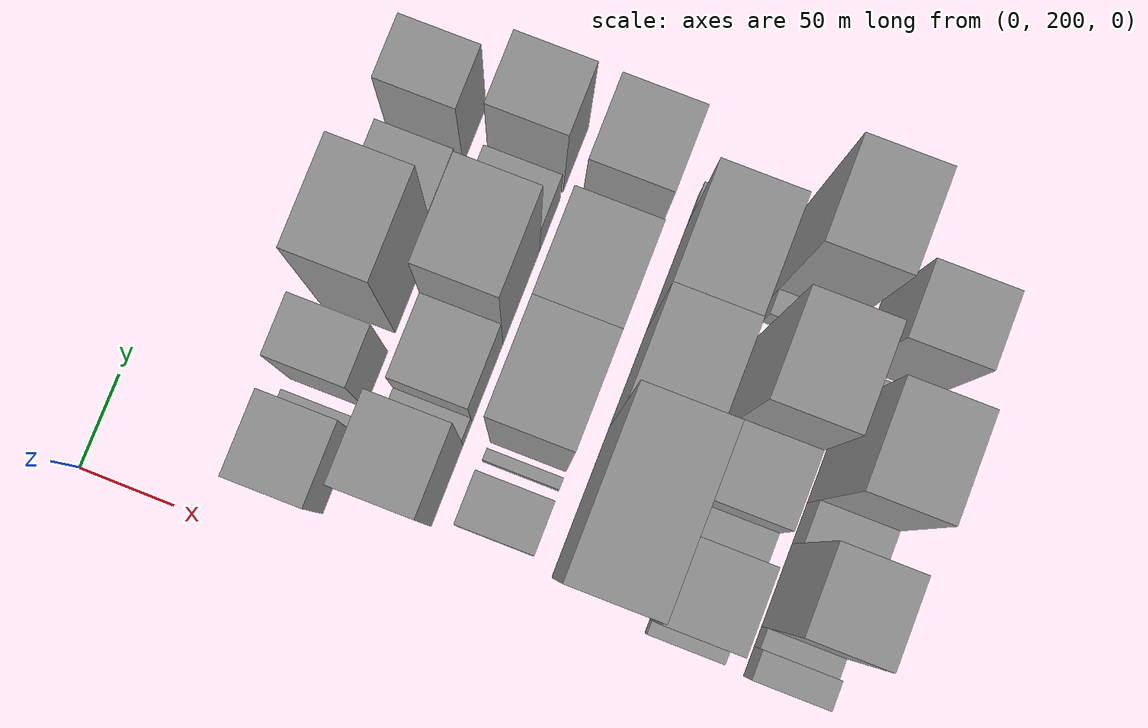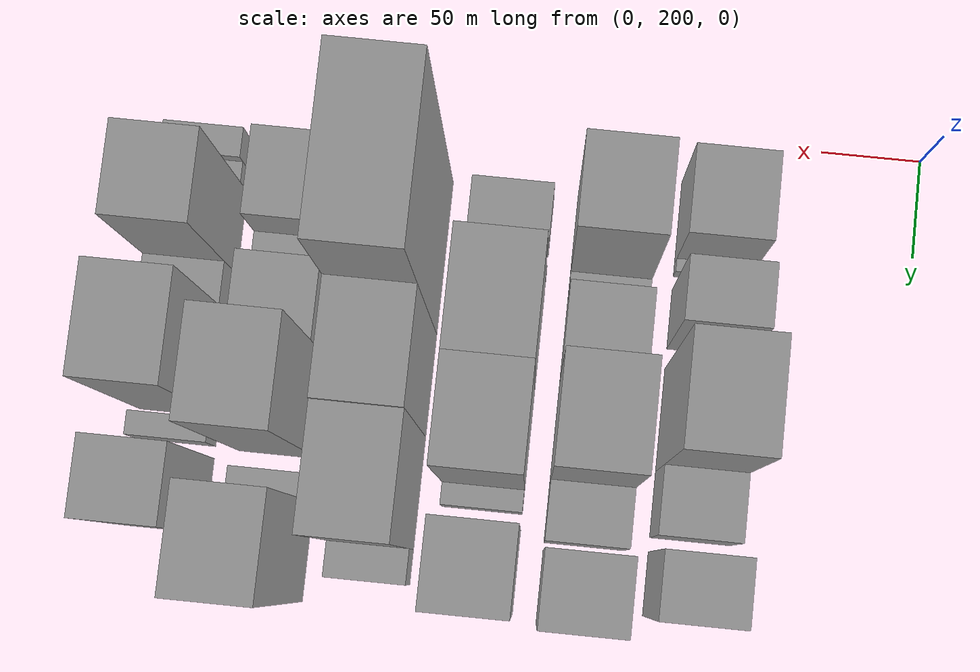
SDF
<sdf version="1.6">
 <world name="default">
  <model name="building_31">
   <static>1</static>
   <pose>100.0000 243.7767 0 0.000000 0.000000 0.000000</pose>
   <link name="link">
    <pose>0 0 39.00 0 0 0</pose>
    <collision name="collision"><geometry><box><size>40.0000 42.4446 78.0000</size></box></geometry></collision>
    <visual name="visual">
     <cast_shadows>0</cast_shadows>
     <geometry><box><size>40.0000 42.4446 78.0000</size></box></geometry>
     <material>
      <script>
       <uri>model://grey_wall/materials/scripts</uri>
       <uri>model://grey_wall/materials/textures</uri>
       <name>vrc/grey_wall</name>
      </script>
     </material>
    </visual>
   </link>
  </model>
  <model name="building_32">
   <static>1</static>
   <pose>100.0000 268.2766 0 0.000000 0.000000 0.000000</pose>
   <link name="link">
    <pose>0 0 7.50 0 0 0</pose>
    <collision name="collision"><geometry><box><size>40.0000 6.5552 15.0000</size></box></geometry></collision>
    <visual name="visual">
     <cast_shadows>0</cast_shadows>
     <geometry><box><size>40.0000 6.5552 15.0000</size></box></geometry>
     <material>
      <script>
       <uri>model://grey_wall/materials/scripts</uri>
       <uri>model://grey_wall/materials/textures</uri>
       <name>vrc/grey_wall</name>
      </script>
     </material>
    </visual>
   </link>
  </model>
  <model name="building_33">
   <static>1</static>
   <pose>100.0000 293.6610 0 0.000000 0.000000 0.000000</pose>
   <link name="link">
    <pose>0 0 48.00 0 0 0</pose>
    <collision name="collision"><geometry><box><size>40.0000 30.2137 96.0000</size></box></geometry></collision>
    <visual name="visual">
     <cast_shadows>0</cast_shadows>
     <geometry><box><size>40.0000 30.2137 96.0000</size></box></geometry>
     <material>
      <script>
       <uri>model://grey_wall/materials/scripts</uri>
       <uri>model://grey_wall/materials/textures</uri>
       <name>vrc/grey_wall</name>
      </script>
     </material>
    </visual>
   </link>
  </model>
  <model name="building_34">
   <static>1</static>
   <pose>100.0000 344.8513 0 0.000000 0.000000 0.000000</pose>
   <link name="link">
    <pose>0 0 75.00 0 0 0</pose>
    <collision name="collision"><geometry><box><size>40.0000 52.1668 150.0000</size></box></geometry></collision>
    <visual name="visual">
     <cast_shadows>0</cast_shadows>
     <geometry><box><size>40.0000 52.1668 150.0000</size></box></geometry>
     <material>
      <script>
       <uri>model://grey_wall/materials/scripts</uri>
       <uri>model://grey_wall/materials/textures</uri>
       <name>vrc/grey_wall</name>
      </script>
     </material>
    </visual>
   </link>
  </model>
  <model name="building_35">
   <static>1</static>
   <pose>100.0000 387.3853 0 0.000000 0.000000 0.000000</pose>
   <link name="link">
    <pose>0 0 28.50 0 0 0</pose>
    <collision name="collision"><geometry><box><size>40.0000 32.9012 57.0000</size></box></geometry></collision>
    <visual name="visual">
     <cast_shadows>0</cast_shadows>
     <geometry><box><size>40.0000 32.9012 57.0000</size></box></geometry>
     <material>
      <script>
       <uri>model://grey_wall/materials/scripts</uri>
       <uri>model://grey_wall/materials/textures</uri>
       <name>vrc/grey_wall</name>
      </script>
     </material>
    </visual>
   </link>
  </model>
  <model name="building_36">
   <static>1</static>
   <pose>100.0000 426.6326 0 0.000000 0.000000 0.000000</pose>
   <link name="link">
    <pose>0 0 51.00 0 0 0</pose>
    <collision name="collision"><geometry><box><size>40.0000 31.5933 102.0000</size></box></geometry></collision>
    <visual name="visual">
     <cast_shadows>0</cast_shadows>
     <geometry><box><size>40.0000 31.5933 102.0000</size></box></geometry>
     <material>
      <script>
       <uri>model://grey_wall/materials/scripts</uri>
       <uri>model://grey_wall/materials/textures</uri>
       <name>vrc/grey_wall</name>
      </script>
     </material>
    </visual>
   </link>
  </model>
  <model name="building_76">
   <static>1</static>
   <pose>152.0000 257.5611 0 0.000000 0.000000 0.000000</pose>
   <link name="link">
    <pose>0 0 66.00 0 0 0</pose>
    <collision name="collision"><geometry><box><size>40.0000 42.9223 132.0000</size></box></geometry></collision>
    <visual name="visual">
     <cast_shadows>0</cast_shadows>
     <geometry><box><size>40.0000 42.9223 132.0000</size></box></geometry>
     <material>
      <script>
       <uri>model://grey_wall/materials/scripts</uri>
       <uri>model://grey_wall/materials/textures</uri>
       <name>vrc/grey_wall</name>
      </script>
     </material>
    </visual>
   </link>
  </model>
  <model name="building_77">
   <static>1</static>
   <pose>152.0000 285.0619 0 0.000000 0.000000 0.000000</pose>
   <link name="link">
    <pose>0 0 13.50 0 0 0</pose>
    <collision name="collision"><geometry><box><size>40.0000 12.0793 27.0000</size></box></geometry></collision>
    <visual name="visual">
     <cast_shadows>0</cast_shadows>
     <geometry><box><size>40.0000 12.0793 27.0000</size></box></geometry>
     <material>
      <script>
       <uri>model://grey_wall/materials/scripts</uri>
       <uri>model://grey_wall/materials/textures</uri>
       <name>vrc/grey_wall</name>
      </script>
     </material>
    </visual>
   </link>
  </model>
  <model name="building_78">
   <static>1</static>
   <pose>152.0000 311.9442 0 0.000000 0.000000 0.000000</pose>
   <link name="link">
    <pose>0 0 36.00 0 0 0</pose>
    <collision name="collision"><geometry><box><size>40.0000 41.6852 72.0000</size></box></geometry></collision>
    <visual name="visual">
     <cast_shadows>0</cast_shadows>
     <geometry><box><size>40.0000 41.6852 72.0000</size></box></geometry>
     <material>
      <script>
       <uri>model://grey_wall/materials/scripts</uri>
       <uri>model://grey_wall/materials/textures</uri>
       <name>vrc/grey_wall</name>
      </script>
     </material>
    </visual>
   </link>
  </model>
  <model name="building_79">
   <static>1</static>
   <pose>152.0000 357.8503 0 0.000000 0.000000 0.000000</pose>
   <link name="link">
    <pose>0 0 73.50 0 0 0</pose>
    <collision name="collision"><geometry><box><size>40.0000 50.1271 147.0000</size></box></geometry></collision>
    <visual name="visual">
     <cast_shadows>0</cast_shadows>
     <geometry><box><size>40.0000 50.1271 147.0000</size></box></geometry>
     <material>
      <script>
       <uri>model://grey_wall/materials/scripts</uri>
       <uri>model://grey_wall/materials/textures</uri>
       <name>vrc/grey_wall</name>
      </script>
     </material>
    </visual>
   </link>
  </model>
  <model name="building_80">
   <static>1</static>
   <pose>152.0000 397.2267 0 0.000000 0.000000 0.000000</pose>
   <link name="link">
    <pose>0 0 27.00 0 0 0</pose>
    <collision name="collision"><geometry><box><size>40.0000 28.6257 54.0000</size></box></geometry></collision>
    <visual name="visual">
     <cast_shadows>0</cast_shadows>
     <geometry><box><size>40.0000 28.6257 54.0000</size></box></geometry>
     <material>
      <script>
       <uri>model://grey_wall/materials/scripts</uri>
       <uri>model://grey_wall/materials/textures</uri>
       <name>vrc/grey_wall</name>
      </script>
     </material>
    </visual>
   </link>
  </model>
  <model name="building_81">
   <static>1</static>
   <pose>152.0000 433.4288 0 0.000000 0.000000 0.000000</pose>
   <link name="link">
    <pose>0 0 55.50 0 0 0</pose>
    <collision name="collision"><geometry><box><size>40.0000 35.7785 111.0000</size></box></geometry></collision>
    <visual name="visual">
     <cast_shadows>0</cast_shadows>
     <geometry><box><size>40.0000 35.7785 111.0000</size></box></geometry>
     <material>
      <script>
       <uri>model://grey_wall/materials/scripts</uri>
       <uri>model://grey_wall/materials/textures</uri>
       <name>vrc/grey_wall</name>
      </script>
     </material>
    </visual>
   </link>
  </model>
  <model name="building_130">
   <static>1</static>
   <pose>204.0000 254.3857 0 0.000000 0.000000 0.000000</pose>
   <link name="link">
    <pose>0 0 24.00 0 0 0</pose>
    <collision name="collision"><geometry><box><size>40.0000 27.1744 48.0000</size></box></geometry></collision>
    <visual name="visual">
     <cast_shadows>0</cast_shadows>
     <geometry><box><size>40.0000 27.1744 48.0000</size></box></geometry>
     <material>
      <script>
       <uri>model://grey_wall/materials/scripts</uri>
       <uri>model://grey_wall/materials/textures</uri>
       <name>vrc/grey_wall</name>
      </script>
     </material>
    </visual>
   </link>
  </model>
  <model name="building_131">
   <static>1</static>
   <pose>204.0000 278.0805 0 0.000000 0.000000 0.000000</pose>
   <link name="link">
    <pose>0 0 7.50 0 0 0</pose>
    <collision name="collision"><geometry><box><size>40.0000 6.2152 15.0000</size></box></geometry></collision>
    <visual name="visual">
     <cast_shadows>0</cast_shadows>
     <geometry><box><size>40.0000 6.2152 15.0000</size></box></geometry>
     <material>
      <script>
       <uri>model://grey_wall/materials/scripts</uri>
       <uri>model://grey_wall/materials/textures</uri>
       <name>vrc/grey_wall</name>
      </script>
     </material>
    </visual>
   </link>
  </model>
  <model name="building_132">
   <static>1</static>
   <pose>204.0000 312.2605 0 0.000000 0.000000 0.000000</pose>
   <link name="link">
    <pose>0 0 73.50 0 0 0</pose>
    <collision name="collision"><geometry><box><size>40.0000 54.1449 147.0000</size></box></geometry></collision>
    <visual name="visual">
     <cast_shadows>0</cast_shadows>
     <geometry><box><size>40.0000 54.1449 147.0000</size></box></geometry>
     <material>
      <script>
       <uri>model://grey_wall/materials/scripts</uri>
       <uri>model://grey_wall/materials/textures</uri>
       <name>vrc/grey_wall</name>
      </script>
     </material>
    </visual>
   </link>
  </model>
  <model name="building_133">
   <static>1</static>
   <pose>204.0000 363.5900 0 0.000000 0.000000 0.000000</pose>
   <link name="link">
    <pose>0 0 73.50 0 0 0</pose>
    <collision name="collision"><geometry><box><size>40.0000 48.5142 147.0000</size></box></geometry></collision>
    <visual name="visual">
     <cast_shadows>0</cast_shadows>
     <geometry><box><size>40.0000 48.5142 147.0000</size></box></geometry>
     <material>
      <script>
       <uri>model://grey_wall/materials/scripts</uri>
       <uri>model://grey_wall/materials/textures</uri>
       <name>vrc/grey_wall</name>
      </script>
     </material>
    </visual>
   </link>
  </model>
  <model name="building_134">
   <static>1</static>
   <pose>204.0000 393.3172 0 0.000000 0.000000 0.000000</pose>
   <link name="link">
    <pose>0 0 13.50 0 0 0</pose>
    <collision name="collision"><geometry><box><size>40.0000 10.9402 27.0000</size></box></geometry></collision>
    <visual name="visual">
     <cast_shadows>0</cast_shadows>
     <geometry><box><size>40.0000 10.9402 27.0000</size></box></geometry>
     <material>
      <script>
       <uri>model://grey_wall/materials/scripts</uri>
       <uri>model://grey_wall/materials/textures</uri>
       <name>vrc/grey_wall</name>
      </script>
     </material>
    </visual>
   </link>
  </model>
  <model name="building_135">
   <static>1</static>
   <pose>204.0000 427.4362 0 0.000000 0.000000 0.000000</pose>
   <link name="link">
    <pose>0 0 60.00 0 0 0</pose>
    <collision name="collision"><geometry><box><size>40.0000 41.2978 120.0000</size></box></geometry></collision>
    <visual name="visual">
     <cast_shadows>0</cast_shadows>
     <geometry><box><size>40.0000 41.2978 120.0000</size></box></geometry>
     <material>
      <script>
       <uri>model://grey_wall/materials/scripts</uri>
       <uri>model://grey_wall/materials/textures</uri>
       <name>vrc/grey_wall</name>
      </script>
     </material>
    </visual>
   </link>
  </model>
  <model name="building_176">
   <static>1</static>
   <pose>256.0000 273.7536 0 0.000000 0.000000 0.000000</pose>
   <link name="link">
    <pose>0 0 109.50 0 0 0</pose>
    <collision name="collision"><geometry><box><size>40.0000 78.7221 219.0000</size></box></geometry></collision>
    <visual name="visual">
     <cast_shadows>0</cast_shadows>
     <geometry><box><size>40.0000 78.7221 219.0000</size></box></geometry>
     <material>
      <script>
       <uri>model://grey_wall/materials/scripts</uri>
       <uri>model://grey_wall/materials/textures</uri>
       <name>vrc/grey_wall</name>
      </script>
     </material>
    </visual>
   </link>
  </model>
  <model name="building_177">
   <static>1</static>
   <pose>256.0000 339.0817 0 0.000000 0.000000 0.000000</pose>
   <link name="link">
    <pose>0 0 73.50 0 0 0</pose>
    <collision name="collision"><geometry><box><size>40.0000 51.9339 147.0000</size></box></geometry></collision>
    <visual name="visual">
     <cast_shadows>0</cast_shadows>
     <geometry><box><size>40.0000 51.9339 147.0000</size></box></geometry>
     <material>
      <script>
       <uri>model://grey_wall/materials/scripts</uri>
       <uri>model://grey_wall/materials/textures</uri>
       <name>vrc/grey_wall</name>
      </script>
     </material>
    </visual>
   </link>
  </model>
  <model name="building_178">
   <static>1</static>
   <pose>256.0000 393.2322 0 0.000000 0.000000 0.000000</pose>
   <link name="link">
    <pose>0 0 72.00 0 0 0</pose>
    <collision name="collision"><geometry><box><size>40.0000 56.3672 144.0000</size></box></geometry></collision>
    <visual name="visual">
     <cast_shadows>0</cast_shadows>
     <geometry><box><size>40.0000 56.3672 144.0000</size></box></geometry>
     <material>
      <script>
       <uri>model://grey_wall/materials/scripts</uri>
       <uri>model://grey_wall/materials/textures</uri>
       <name>vrc/grey_wall</name>
      </script>
     </material>
    </visual>
   </link>
  </model>
  <model name="building_179">
   <static>1</static>
   <pose>256.0000 430.1611 0 0.000000 0.000000 0.000000</pose>
   <link name="link">
    <pose>0 0 15.00 0 0 0</pose>
    <collision name="collision"><geometry><box><size>40.0000 17.4907 30.0000</size></box></geometry></collision>
    <visual name="visual">
     <cast_shadows>0</cast_shadows>
     <geometry><box><size>40.0000 17.4907 30.0000</size></box></geometry>
     <material>
      <script>
       <uri>model://grey_wall/materials/scripts</uri>
       <uri>model://grey_wall/materials/textures</uri>
       <name>vrc/grey_wall</name>
      </script>
     </material>
    </visual>
   </link>
  </model>
  <model name="building_220">
   <static>1</static>
   <pose>308.0000 229.3192 0 0.000000 0.000000 0.000000</pose>
   <link name="link">
    <pose>0 0 7.50 0 0 0</pose>
    <collision name="collision"><geometry><box><size>40.0000 7.0178 15.0000</size></box></geometry></collision>
    <visual name="visual">
     <cast_shadows>0</cast_shadows>
     <geometry><box><size>40.0000 7.0178 15.0000</size></box></geometry>
     <material>
      <script>
       <uri>model://grey_wall/materials/scripts</uri>
       <uri>model://grey_wall/materials/textures</uri>
       <name>vrc/grey_wall</name>
      </script>
     </material>
    </visual>
   </link>
  </model>
  <model name="building_221">
   <static>1</static>
   <pose>308.0000 254.3008 0 0.000000 0.000000 0.000000</pose>
   <link name="link">
    <pose>0 0 36.00 0 0 0</pose>
    <collision name="collision"><geometry><box><size>40.0000 42.9456 72.0000</size></box></geometry></collision>
    <visual name="visual">
     <cast_shadows>0</cast_shadows>
     <geometry><box><size>40.0000 42.9456 72.0000</size></box></geometry>
     <material>
      <script>
       <uri>model://grey_wall/materials/scripts</uri>
       <uri>model://grey_wall/materials/textures</uri>
       <name>vrc/grey_wall</name>
      </script>
     </material>
    </visual>
   </link>
  </model>
  <model name="building_222">
   <static>1</static>
   <pose>308.0000 284.3131 0 0.000000 0.000000 0.000000</pose>
   <link name="link">
    <pose>0 0 16.50 0 0 0</pose>
    <collision name="collision"><geometry><box><size>40.0000 17.0789 33.0000</size></box></geometry></collision>
    <visual name="visual">
     <cast_shadows>0</cast_shadows>
     <geometry><box><size>40.0000 17.0789 33.0000</size></box></geometry>
     <material>
      <script>
       <uri>model://grey_wall/materials/scripts</uri>
       <uri>model://grey_wall/materials/textures</uri>
       <name>vrc/grey_wall</name>
      </script>
     </material>
    </visual>
   </link>
  </model>
  <model name="building_223">
   <static>1</static>
   <pose>308.0000 312.3162 0 0.000000 0.000000 0.000000</pose>
   <link name="link">
    <pose>0 0 37.50 0 0 0</pose>
    <collision name="collision"><geometry><box><size>40.0000 38.9274 75.0000</size></box></geometry></collision>
    <visual name="visual">
     <cast_shadows>0</cast_shadows>
     <geometry><box><size>40.0000 38.9274 75.0000</size></box></geometry>
     <material>
      <script>
       <uri>model://grey_wall/materials/scripts</uri>
       <uri>model://grey_wall/materials/textures</uri>
       <name>vrc/grey_wall</name>
      </script>
     </material>
    </visual>
   </link>
  </model>
  <model name="building_224">
   <static>1</static>
   <pose>308.0000 356.5450 0 0.000000 0.000000 0.000000</pose>
   <link name="link">
    <pose>0 0 81.00 0 0 0</pose>
    <collision name="collision"><geometry><box><size>40.0000 49.5303 162.0000</size></box></geometry></collision>
    <visual name="visual">
     <cast_shadows>0</cast_shadows>
     <geometry><box><size>40.0000 49.5303 162.0000</size></box></geometry>
     <material>
      <script>
       <uri>model://grey_wall/materials/scripts</uri>
       <uri>model://grey_wall/materials/textures</uri>
       <name>vrc/grey_wall</name>
      </script>
     </material>
    </visual>
   </link>
  </model>
  <model name="building_225">
   <static>1</static>
   <pose>308.0000 396.8063 0 0.000000 0.000000 0.000000</pose>
   <link name="link">
    <pose>0 0 13.50 0 0 0</pose>
    <collision name="collision"><geometry><box><size>40.0000 12.9922 27.0000</size></box></geometry></collision>
    <visual name="visual">
     <cast_shadows>0</cast_shadows>
     <geometry><box><size>40.0000 12.9922 27.0000</size></box></geometry>
     <material>
      <script>
       <uri>model://grey_wall/materials/scripts</uri>
       <uri>model://grey_wall/materials/textures</uri>
       <name>vrc/grey_wall</name>
      </script>
     </material>
    </visual>
   </link>
  </model>
  <model name="building_226">
   <static>1</static>
   <pose>308.0000 427.8484 0 0.000000 0.000000 0.000000</pose>
   <link name="link">
    <pose>0 0 73.50 0 0 0</pose>
    <collision name="collision"><geometry><box><size>40.0000 49.0919 147.0000</size></box></geometry></collision>
    <visual name="visual">
     <cast_shadows>0</cast_shadows>
     <geometry><box><size>40.0000 49.0919 147.0000</size></box></geometry>
     <material>
      <script>
       <uri>model://grey_wall/materials/scripts</uri>
       <uri>model://grey_wall/materials/textures</uri>
       <name>vrc/grey_wall</name>
      </script>
     </material>
    </visual>
   </link>
  </model>
  <model name="building_267">
   <static>1</static>
   <pose>360.0000 231.5743 0 0.000000 0.000000 0.000000</pose>
   <link name="link">
    <pose>0 0 15.00 0 0 0</pose>
    <collision name="collision"><geometry><box><size>40.0000 15.1886 30.0000</size></box></geometry></collision>
    <visual name="visual">
     <cast_shadows>0</cast_shadows>
     <geometry><box><size>40.0000 15.1886 30.0000</size></box></geometry>
     <material>
      <script>
       <uri>model://grey_wall/materials/scripts</uri>
       <uri>model://grey_wall/materials/textures</uri>
       <name>vrc/grey_wall</name>
      </script>
     </material>
    </visual>
   </link>
  </model>
  <model name="building_268">
   <static>1</static>
   <pose>360.0000 244.3528 0 0.000000 0.000000 0.000000</pose>
   <link name="link">
    <pose>0 0 10.50 0 0 0</pose>
    <collision name="collision"><geometry><box><size>40.0000 10.3685 21.0000</size></box></geometry></collision>
    <visual name="visual">
     <cast_shadows>0</cast_shadows>
     <geometry><box><size>40.0000 10.3685 21.0000</size></box></geometry>
     <material>
      <script>
       <uri>model://grey_wall/materials/scripts</uri>
       <uri>model://grey_wall/materials/textures</uri>
       <name>vrc/grey_wall</name>
      </script>
     </material>
    </visual>
   </link>
  </model>
  <model name="building_269">
   <static>1</static>
   <pose>360.0000 271.0827 0 0.000000 0.000000 0.000000</pose>
   <link name="link">
    <pose>0 0 61.50 0 0 0</pose>
    <collision name="collision"><geometry><box><size>40.0000 43.0913 123.0000</size></box></geometry></collision>
    <visual name="visual">
     <cast_shadows>0</cast_shadows>
     <geometry><box><size>40.0000 43.0913 123.0000</size></box></geometry>
     <material>
      <script>
       <uri>model://grey_wall/materials/scripts</uri>
       <uri>model://grey_wall/materials/textures</uri>
       <name>vrc/grey_wall</name>
      </script>
     </material>
    </visual>
   </link>
  </model>
  <model name="building_270">
   <static>1</static>
   <pose>360.0000 303.3711 0 0.000000 0.000000 0.000000</pose>
   <link name="link">
    <pose>0 0 18.00 0 0 0</pose>
    <collision name="collision"><geometry><box><size>40.0000 21.4854 36.0000</size></box></geometry></collision>
    <visual name="visual">
     <cast_shadows>0</cast_shadows>
     <geometry><box><size>40.0000 21.4854 36.0000</size></box></geometry>
     <material>
      <script>
       <uri>model://grey_wall/materials/scripts</uri>
       <uri>model://grey_wall/materials/textures</uri>
       <name>vrc/grey_wall</name>
      </script>
     </material>
    </visual>
   </link>
  </model>
  <model name="building_271">
   <static>1</static>
   <pose>360.0000 339.7658 0 0.000000 0.000000 0.000000</pose>
   <link name="link">
    <pose>0 0 69.00 0 0 0</pose>
    <collision name="collision"><geometry><box><size>40.0000 51.3042 138.0000</size></box></geometry></collision>
    <visual name="visual">
     <cast_shadows>0</cast_shadows>
     <geometry><box><size>40.0000 51.3042 138.0000</size></box></geometry>
     <material>
      <script>
       <uri>model://grey_wall/materials/scripts</uri>
       <uri>model://grey_wall/materials/textures</uri>
       <name>vrc/grey_wall</name>
      </script>
     </material>
    </visual>
   </link>
  </model>
  <model name="building_272">
   <static>1</static>
   <pose>360.0000 374.4001 0 0.000000 0.000000 0.000000</pose>
   <link name="link">
    <pose>0 0 13.50 0 0 0</pose>
    <collision name="collision"><geometry><box><size>40.0000 11.9643 27.0000</size></box></geometry></collision>
    <visual name="visual">
     <cast_shadows>0</cast_shadows>
     <geometry><box><size>40.0000 11.9643 27.0000</size></box></geometry>
     <material>
      <script>
       <uri>model://grey_wall/materials/scripts</uri>
       <uri>model://grey_wall/materials/textures</uri>
       <name>vrc/grey_wall</name>
      </script>
     </material>
    </visual>
   </link>
  </model>
  <model name="building_273">
   <static>1</static>
   <pose>360.0000 405.0792 0 0.000000 0.000000 0.000000</pose>
   <link name="link">
    <pose>0 0 54.00 0 0 0</pose>
    <collision name="collision"><geometry><box><size>40.0000 37.3939 108.0000</size></box></geometry></collision>
    <visual name="visual">
     <cast_shadows>0</cast_shadows>
     <geometry><box><size>40.0000 37.3939 108.0000</size></box></geometry>
     <material>
      <script>
       <uri>model://grey_wall/materials/scripts</uri>
       <uri>model://grey_wall/materials/textures</uri>
       <name>vrc/grey_wall</name>
      </script>
     </material>
    </visual>
   </link>
  </model>
 </world>
</sdf>
